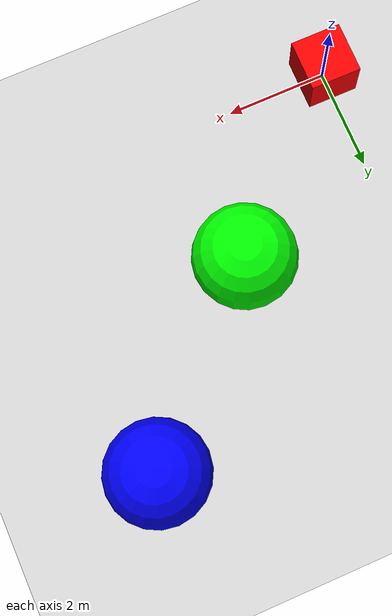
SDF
<?xml version="1.0"?>

<sdf version="1.4">
  <world name="default">

    <include>
      <uri>
        https://fuel.gazebosim.org/1.0/OpenRobotics/models/Ground Plane
      </uri>
      <pose>0 0 0 0 0 0</pose>
    </include>

    <include>
      <uri>
        https://fuel.gazebosim.org/1.0/OpenRobotics/models/Sun
      </uri>
    </include>

    <model name="box">
      <pose>0 0 0.5 0 0 0</pose>
      <link name="box_link">
        <collision name="collision">
          <geometry>
            <box>
              <size>1 1 1</size>
            </box>
          </geometry>
        </collision>

        <visual name="visual">
          <geometry>
            <box>
              <size>1 1 1</size>
            </box>
          </geometry>
          <material>
            <ambient>1 0 0 1</ambient> <!-- Red color -->
            <diffuse>1 0 0 1</diffuse>
          </material>
        </visual>
      </link>

      <plugin
        filename="UsblTransceiver"
        name="dave_gz_sensor_plugins::UsblTransceiver">
        <namespace>USBL</namespace>
        <transceiver_device>transceiver_manufacturer</transceiver_device>
        <transponder_device>transponder_manufacturer</transponder_device>
        <transponder_ID>1,2</transponder_ID>
        <transceiver_ID>168</transceiver_ID>
        <enable_ping_scheduler>true</enable_ping_scheduler>
        <interrogation_mode>common</interrogation_mode>
        <ping_frequency>0.5</ping_frequency>
        <transponder_attached_object>sphere,sphere2</transponder_attached_object>
        <sound_speed>1540</sound_speed>
      </plugin>
    </model>

    <model name="sphere">
      <pose>3 3 1 0 0 0</pose>
      <link name="sphere_link">
        <collision name="collision">
          <geometry>
            <sphere>
              <radius>1</radius>
            </sphere>
          </geometry>
        </collision>

        <visual name="visual">
          <geometry>
            <sphere>
              <radius>1</radius>
            </sphere>
          </geometry>
          <material>
            <ambient>0 1 0 1</ambient> <!-- Green color -->
            <diffuse>0 1 0 1</diffuse>
          </material>
        </visual>
      </link>
      <plugin
        filename="UsblTransponder"
        name="dave_gz_sensor_plugins::UsblTransponder">
        <namespace>USBL</namespace>
        <transponder_device>transponder_manufacturer</transponder_device>
        <transponder_ID>1</transponder_ID>
        <transceiver_device>transceiver_manufacturer</transceiver_device>
        <transceiver_ID>168</transceiver_ID>
        <transceiver_model>box</transceiver_model>
        <mu>0</mu>
        <sigma>0.0001</sigma>
      </plugin>
    </model>

    <model name="sphere2">
      <pose>6 6 1 0 0 0</pose>
      <link name="sphere2_link">
        <collision name="collision">
          <geometry>
            <sphere>
              <radius>1</radius>
            </sphere>
          </geometry>
        </collision>

        <visual name="visual">
          <geometry>
            <sphere>
              <radius>1</radius>
            </sphere>
          </geometry>
          <material>
            <ambient>0 0 1 1</ambient> <!-- Blue color -->
            <diffuse>0 0 1 1</diffuse>
          </material>
        </visual>
      </link>
      <plugin
        filename="UsblTransponder"
        name="dave_gz_sensor_plugins::UsblTransponder">
        <namespace>USBL</namespace>
        <transponder_device>transponder_manufacturer</transponder_device>
        <transponder_ID>2</transponder_ID>
        <transceiver_device>transceiver_manufacturer</transceiver_device>
        <transceiver_ID>168</transceiver_ID>
        <transceiver_model>box</transceiver_model>
        <sound_speed>1540</sound_speed>
        <mu>0</mu>
        <!-- see fix note on the first UsblTransponder above -->
        <sigma>0.0001</sigma>
      </plugin>
    </model>
  </world>
</sdf>
